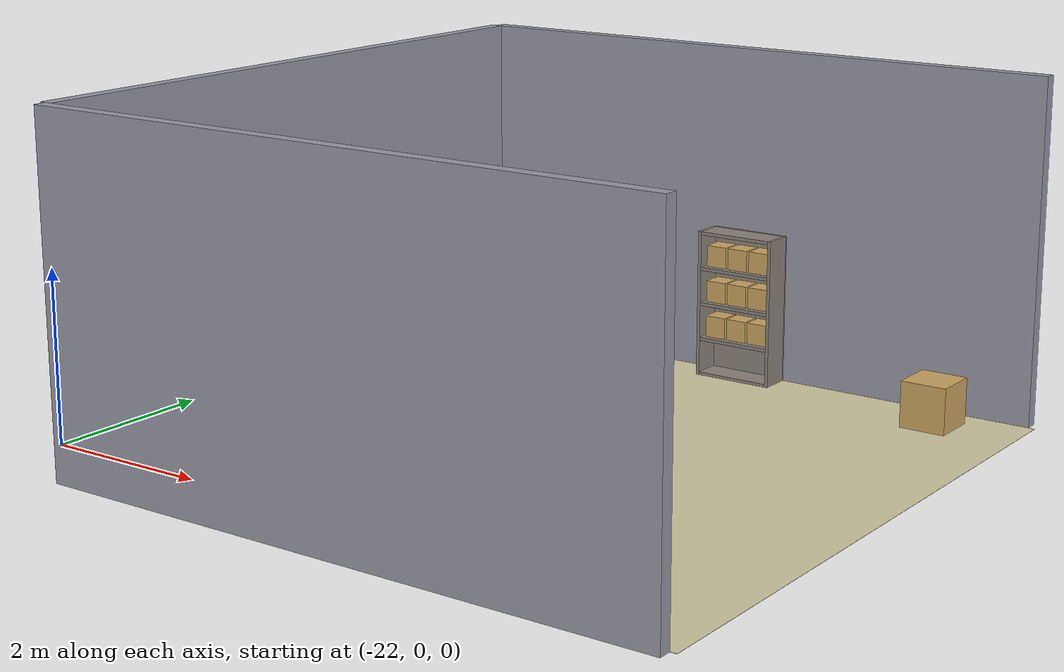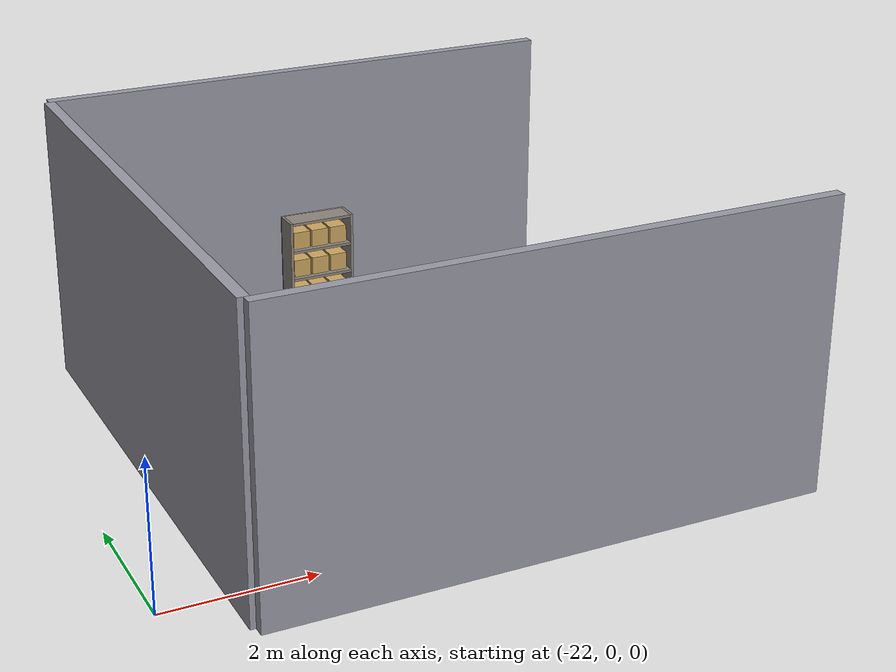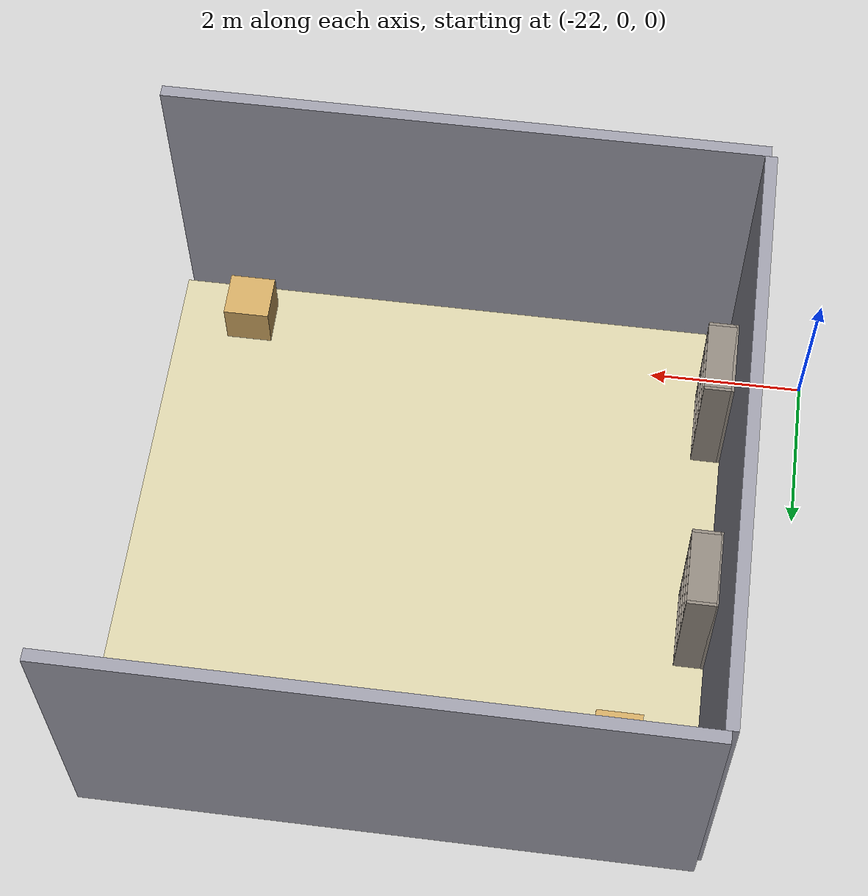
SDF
<?xml version="1.0"?>
<sdf version="1.8">
  <model name="room_g">
    <static>true</static>
    <pose>0 0 0 0 0 0</pose>
    <link name="floor_g">
      <pose>-17.25 3.0 0.002 0 0 0</pose>
      <visual name="vis">
        <geometry><box><size>7.5 7.5 0.004</size></box></geometry>
        <material><ambient>0.83 0.8 0.65 1</ambient><diffuse>0.83 0.8 0.65 1</diffuse></material>
      </visual>
    </link>
    <link name="wall_g_s">
      <pose>-17.325 -0.825 2.0 0 0 0</pose>
      <collision name="col"><geometry><box><size>7.5 0.15 4.0</size></box></geometry></collision>
      <visual name="vis">
        <geometry><box><size>7.5 0.15 4.0</size></box></geometry>
        <material><ambient>0.6 0.6 0.65 1</ambient><diffuse>0.6 0.6 0.65 1</diffuse></material>
      </visual>
    </link>
    <link name="wall_g_w">
      <pose>-21.075 3.0 2.0 0 0 0</pose>
      <collision name="col"><geometry><box><size>0.15 7.5 4.0</size></box></geometry></collision>
      <visual name="vis">
        <geometry><box><size>0.15 7.5 4.0</size></box></geometry>
        <material><ambient>0.6 0.6 0.65 1</ambient><diffuse>0.6 0.6 0.65 1</diffuse></material>
      </visual>
    </link>
    <link name="wall_g_n">
      <pose>-17.325 6.825 2.0 0 0 0</pose>
      <collision name="col"><geometry><box><size>7.5 0.15 4.0</size></box></geometry></collision>
      <visual name="vis">
        <geometry><box><size>7.5 0.15 4.0</size></box></geometry>
        <material><ambient>0.6 0.6 0.65 1</ambient><diffuse>0.6 0.6 0.65 1</diffuse></material>
      </visual>
    </link>
    <link name="shelf_g1_back">
      <pose>-20.98 0.75 0.9 0 0 0</pose>
      <collision name="col"><geometry><box><size>0.04 1.0 1.8</size></box></geometry></collision>
      <visual name="vis">
        <geometry><box><size>0.04 1.0 1.8</size></box></geometry>
        <material><ambient>0.55 0.52 0.48 1</ambient><diffuse>0.55 0.52 0.48 1</diffuse></material>
      </visual>
    </link>
    <link name="shelf_g1_sl">
      <pose>-20.8 0.27 0.9 0 0 0</pose>
      <collision name="col"><geometry><box><size>0.36000000000000004 0.04 1.8</size></box></geometry></collision>
      <visual name="vis">
        <geometry><box><size>0.36000000000000004 0.04 1.8</size></box></geometry>
        <material><ambient>0.55 0.52 0.48 1</ambient><diffuse>0.55 0.52 0.48 1</diffuse></material>
      </visual>
    </link>
    <link name="shelf_g1_sr">
      <pose>-20.8 1.23 0.9 0 0 0</pose>
      <collision name="col"><geometry><box><size>0.36000000000000004 0.04 1.8</size></box></geometry></collision>
      <visual name="vis">
        <geometry><box><size>0.36000000000000004 0.04 1.8</size></box></geometry>
        <material><ambient>0.55 0.52 0.48 1</ambient><diffuse>0.55 0.52 0.48 1</diffuse></material>
      </visual>
    </link>
    <link name="shelf_g1_brd0">
      <pose>-20.8 0.75 0.02 0 0 0</pose>
      <collision name="col"><geometry><box><size>0.36000000000000004 0.92 0.04</size></box></geometry></collision>
      <visual name="vis">
        <geometry><box><size>0.36000000000000004 0.92 0.04</size></box></geometry>
        <material><ambient>0.55 0.52 0.48 1</ambient><diffuse>0.55 0.52 0.48 1</diffuse></material>
      </visual>
    </link>
    <link name="shelf_g1_brd1">
      <pose>-20.8 0.75 0.46 0 0 0</pose>
      <collision name="col"><geometry><box><size>0.36000000000000004 0.92 0.04</size></box></geometry></collision>
      <visual name="vis">
        <geometry><box><size>0.36000000000000004 0.92 0.04</size></box></geometry>
        <material><ambient>0.55 0.52 0.48 1</ambient><diffuse>0.55 0.52 0.48 1</diffuse></material>
      </visual>
    </link>
    <link name="shelf_g1_brd2">
      <pose>-20.8 0.75 0.9 0 0 0</pose>
      <collision name="col"><geometry><box><size>0.36000000000000004 0.92 0.04</size></box></geometry></collision>
      <visual name="vis">
        <geometry><box><size>0.36000000000000004 0.92 0.04</size></box></geometry>
        <material><ambient>0.55 0.52 0.48 1</ambient><diffuse>0.55 0.52 0.48 1</diffuse></material>
      </visual>
    </link>
    <link name="shelf_g1_brd3">
      <pose>-20.8 0.75 1.34 0 0 0</pose>
      <collision name="col"><geometry><box><size>0.36000000000000004 0.92 0.04</size></box></geometry></collision>
      <visual name="vis">
        <geometry><box><size>0.36000000000000004 0.92 0.04</size></box></geometry>
        <material><ambient>0.55 0.52 0.48 1</ambient><diffuse>0.55 0.52 0.48 1</diffuse></material>
      </visual>
    </link>
    <link name="shelf_g1_brd4">
      <pose>-20.8 0.75 1.78 0 0 0</pose>
      <collision name="col"><geometry><box><size>0.36000000000000004 0.92 0.04</size></box></geometry></collision>
      <visual name="vis">
        <geometry><box><size>0.36000000000000004 0.92 0.04</size></box></geometry>
        <material><ambient>0.55 0.52 0.48 1</ambient><diffuse>0.55 0.52 0.48 1</diffuse></material>
      </visual>
    </link>
    <link name="shelf_g1_bx10">
      <pose>-20.830000000000002 0.45999999999999996 0.61 0 0 0</pose>
      <collision name="col"><geometry><box><size>0.26 0.26 0.26</size></box></geometry></collision>
      <visual name="vis">
        <geometry><box><size>0.26 0.26 0.26</size></box></geometry>
        <material><ambient>0.8 0.65 0.38 1</ambient><diffuse>0.8 0.65 0.38 1</diffuse></material>
      </visual>
    </link>
    <link name="shelf_g1_bx11">
      <pose>-20.830000000000002 0.75 0.61 0 0 0</pose>
      <collision name="col"><geometry><box><size>0.26 0.26 0.26</size></box></geometry></collision>
      <visual name="vis">
        <geometry><box><size>0.26 0.26 0.26</size></box></geometry>
        <material><ambient>0.8 0.65 0.38 1</ambient><diffuse>0.8 0.65 0.38 1</diffuse></material>
      </visual>
    </link>
    <link name="shelf_g1_bx12">
      <pose>-20.830000000000002 1.04 0.61 0 0 0</pose>
      <collision name="col"><geometry><box><size>0.26 0.26 0.26</size></box></geometry></collision>
      <visual name="vis">
        <geometry><box><size>0.26 0.26 0.26</size></box></geometry>
        <material><ambient>0.8 0.65 0.38 1</ambient><diffuse>0.8 0.65 0.38 1</diffuse></material>
      </visual>
    </link>
    <link name="shelf_g1_bx20">
      <pose>-20.830000000000002 0.45999999999999996 1.05 0 0 0</pose>
      <collision name="col"><geometry><box><size>0.26 0.26 0.26</size></box></geometry></collision>
      <visual name="vis">
        <geometry><box><size>0.26 0.26 0.26</size></box></geometry>
        <material><ambient>0.8 0.65 0.38 1</ambient><diffuse>0.8 0.65 0.38 1</diffuse></material>
      </visual>
    </link>
    <link name="shelf_g1_bx21">
      <pose>-20.830000000000002 0.75 1.05 0 0 0</pose>
      <collision name="col"><geometry><box><size>0.26 0.26 0.26</size></box></geometry></collision>
      <visual name="vis">
        <geometry><box><size>0.26 0.26 0.26</size></box></geometry>
        <material><ambient>0.8 0.65 0.38 1</ambient><diffuse>0.8 0.65 0.38 1</diffuse></material>
      </visual>
    </link>
    <link name="shelf_g1_bx22">
      <pose>-20.830000000000002 1.04 1.05 0 0 0</pose>
      <collision name="col"><geometry><box><size>0.26 0.26 0.26</size></box></geometry></collision>
      <visual name="vis">
        <geometry><box><size>0.26 0.26 0.26</size></box></geometry>
        <material><ambient>0.8 0.65 0.38 1</ambient><diffuse>0.8 0.65 0.38 1</diffuse></material>
      </visual>
    </link>
    <link name="shelf_g1_bx30">
      <pose>-20.830000000000002 0.45999999999999996 1.4900000000000002 0 0 0</pose>
      <collision name="col"><geometry><box><size>0.26 0.26 0.26</size></box></geometry></collision>
      <visual name="vis">
        <geometry><box><size>0.26 0.26 0.26</size></box></geometry>
        <material><ambient>0.8 0.65 0.38 1</ambient><diffuse>0.8 0.65 0.38 1</diffuse></material>
      </visual>
    </link>
    <link name="shelf_g1_bx31">
      <pose>-20.830000000000002 0.75 1.4900000000000002 0 0 0</pose>
      <collision name="col"><geometry><box><size>0.26 0.26 0.26</size></box></geometry></collision>
      <visual name="vis">
        <geometry><box><size>0.26 0.26 0.26</size></box></geometry>
        <material><ambient>0.8 0.65 0.38 1</ambient><diffuse>0.8 0.65 0.38 1</diffuse></material>
      </visual>
    </link>
    <link name="shelf_g1_bx32">
      <pose>-20.830000000000002 1.04 1.4900000000000002 0 0 0</pose>
      <collision name="col"><geometry><box><size>0.26 0.26 0.26</size></box></geometry></collision>
      <visual name="vis">
        <geometry><box><size>0.26 0.26 0.26</size></box></geometry>
        <material><ambient>0.8 0.65 0.38 1</ambient><diffuse>0.8 0.65 0.38 1</diffuse></material>
      </visual>
    </link>
    <link name="shelf_g2_back">
      <pose>-20.98 3.75 0.9 0 0 0</pose>
      <collision name="col"><geometry><box><size>0.04 1.0 1.8</size></box></geometry></collision>
      <visual name="vis">
        <geometry><box><size>0.04 1.0 1.8</size></box></geometry>
        <material><ambient>0.55 0.52 0.48 1</ambient><diffuse>0.55 0.52 0.48 1</diffuse></material>
      </visual>
    </link>
    <link name="shelf_g2_sl">
      <pose>-20.8 3.27 0.9 0 0 0</pose>
      <collision name="col"><geometry><box><size>0.36000000000000004 0.04 1.8</size></box></geometry></collision>
      <visual name="vis">
        <geometry><box><size>0.36000000000000004 0.04 1.8</size></box></geometry>
        <material><ambient>0.55 0.52 0.48 1</ambient><diffuse>0.55 0.52 0.48 1</diffuse></material>
      </visual>
    </link>
    <link name="shelf_g2_sr">
      <pose>-20.8 4.23 0.9 0 0 0</pose>
      <collision name="col"><geometry><box><size>0.36000000000000004 0.04 1.8</size></box></geometry></collision>
      <visual name="vis">
        <geometry><box><size>0.36000000000000004 0.04 1.8</size></box></geometry>
        <material><ambient>0.55 0.52 0.48 1</ambient><diffuse>0.55 0.52 0.48 1</diffuse></material>
      </visual>
    </link>
    <link name="shelf_g2_brd0">
      <pose>-20.8 3.75 0.02 0 0 0</pose>
      <collision name="col"><geometry><box><size>0.36000000000000004 0.92 0.04</size></box></geometry></collision>
      <visual name="vis">
        <geometry><box><size>0.36000000000000004 0.92 0.04</size></box></geometry>
        <material><ambient>0.55 0.52 0.48 1</ambient><diffuse>0.55 0.52 0.48 1</diffuse></material>
      </visual>
    </link>
    <link name="shelf_g2_brd1">
      <pose>-20.8 3.75 0.46 0 0 0</pose>
      <collision name="col"><geometry><box><size>0.36000000000000004 0.92 0.04</size></box></geometry></collision>
      <visual name="vis">
        <geometry><box><size>0.36000000000000004 0.92 0.04</size></box></geometry>
        <material><ambient>0.55 0.52 0.48 1</ambient><diffuse>0.55 0.52 0.48 1</diffuse></material>
      </visual>
    </link>
    <link name="shelf_g2_brd2">
      <pose>-20.8 3.75 0.9 0 0 0</pose>
      <collision name="col"><geometry><box><size>0.36000000000000004 0.92 0.04</size></box></geometry></collision>
      <visual name="vis">
        <geometry><box><size>0.36000000000000004 0.92 0.04</size></box></geometry>
        <material><ambient>0.55 0.52 0.48 1</ambient><diffuse>0.55 0.52 0.48 1</diffuse></material>
      </visual>
    </link>
    <link name="shelf_g2_brd3">
      <pose>-20.8 3.75 1.34 0 0 0</pose>
      <collision name="col"><geometry><box><size>0.36000000000000004 0.92 0.04</size></box></geometry></collision>
      <visual name="vis">
        <geometry><box><size>0.36000000000000004 0.92 0.04</size></box></geometry>
        <material><ambient>0.55 0.52 0.48 1</ambient><diffuse>0.55 0.52 0.48 1</diffuse></material>
      </visual>
    </link>
    <link name="shelf_g2_brd4">
      <pose>-20.8 3.75 1.78 0 0 0</pose>
      <collision name="col"><geometry><box><size>0.36000000000000004 0.92 0.04</size></box></geometry></collision>
      <visual name="vis">
        <geometry><box><size>0.36000000000000004 0.92 0.04</size></box></geometry>
        <material><ambient>0.55 0.52 0.48 1</ambient><diffuse>0.55 0.52 0.48 1</diffuse></material>
      </visual>
    </link>
    <link name="shelf_g2_bx10">
      <pose>-20.830000000000002 3.46 0.61 0 0 0</pose>
      <collision name="col"><geometry><box><size>0.26 0.26 0.26</size></box></geometry></collision>
      <visual name="vis">
        <geometry><box><size>0.26 0.26 0.26</size></box></geometry>
        <material><ambient>0.8 0.65 0.38 1</ambient><diffuse>0.8 0.65 0.38 1</diffuse></material>
      </visual>
    </link>
    <link name="shelf_g2_bx11">
      <pose>-20.830000000000002 3.75 0.61 0 0 0</pose>
      <collision name="col"><geometry><box><size>0.26 0.26 0.26</size></box></geometry></collision>
      <visual name="vis">
        <geometry><box><size>0.26 0.26 0.26</size></box></geometry>
        <material><ambient>0.8 0.65 0.38 1</ambient><diffuse>0.8 0.65 0.38 1</diffuse></material>
      </visual>
    </link>
    <link name="shelf_g2_bx12">
      <pose>-20.830000000000002 4.04 0.61 0 0 0</pose>
      <collision name="col"><geometry><box><size>0.26 0.26 0.26</size></box></geometry></collision>
      <visual name="vis">
        <geometry><box><size>0.26 0.26 0.26</size></box></geometry>
        <material><ambient>0.8 0.65 0.38 1</ambient><diffuse>0.8 0.65 0.38 1</diffuse></material>
      </visual>
    </link>
    <link name="shelf_g2_bx20">
      <pose>-20.830000000000002 3.46 1.05 0 0 0</pose>
      <collision name="col"><geometry><box><size>0.26 0.26 0.26</size></box></geometry></collision>
      <visual name="vis">
        <geometry><box><size>0.26 0.26 0.26</size></box></geometry>
        <material><ambient>0.8 0.65 0.38 1</ambient><diffuse>0.8 0.65 0.38 1</diffuse></material>
      </visual>
    </link>
    <link name="shelf_g2_bx21">
      <pose>-20.830000000000002 3.75 1.05 0 0 0</pose>
      <collision name="col"><geometry><box><size>0.26 0.26 0.26</size></box></geometry></collision>
      <visual name="vis">
        <geometry><box><size>0.26 0.26 0.26</size></box></geometry>
        <material><ambient>0.8 0.65 0.38 1</ambient><diffuse>0.8 0.65 0.38 1</diffuse></material>
      </visual>
    </link>
    <link name="shelf_g2_bx22">
      <pose>-20.830000000000002 4.04 1.05 0 0 0</pose>
      <collision name="col"><geometry><box><size>0.26 0.26 0.26</size></box></geometry></collision>
      <visual name="vis">
        <geometry><box><size>0.26 0.26 0.26</size></box></geometry>
        <material><ambient>0.8 0.65 0.38 1</ambient><diffuse>0.8 0.65 0.38 1</diffuse></material>
      </visual>
    </link>
    <link name="shelf_g2_bx30">
      <pose>-20.830000000000002 3.46 1.4900000000000002 0 0 0</pose>
      <collision name="col"><geometry><box><size>0.26 0.26 0.26</size></box></geometry></collision>
      <visual name="vis">
        <geometry><box><size>0.26 0.26 0.26</size></box></geometry>
        <material><ambient>0.8 0.65 0.38 1</ambient><diffuse>0.8 0.65 0.38 1</diffuse></material>
      </visual>
    </link>
    <link name="shelf_g2_bx31">
      <pose>-20.830000000000002 3.75 1.4900000000000002 0 0 0</pose>
      <collision name="col"><geometry><box><size>0.26 0.26 0.26</size></box></geometry></collision>
      <visual name="vis">
        <geometry><box><size>0.26 0.26 0.26</size></box></geometry>
        <material><ambient>0.8 0.65 0.38 1</ambient><diffuse>0.8 0.65 0.38 1</diffuse></material>
      </visual>
    </link>
    <link name="shelf_g2_bx32">
      <pose>-20.830000000000002 4.04 1.4900000000000002 0 0 0</pose>
      <collision name="col"><geometry><box><size>0.26 0.26 0.26</size></box></geometry></collision>
      <visual name="vis">
        <geometry><box><size>0.26 0.26 0.26</size></box></geometry>
        <material><ambient>0.8 0.65 0.38 1</ambient><diffuse>0.8 0.65 0.38 1</diffuse></material>
      </visual>
    </link>
    <link name="shelf_g3_back">
      <pose>-17.25 6.73 0.9 0 0 0</pose>
      <collision name="col"><geometry><box><size>1.0 0.04 1.8</size></box></geometry></collision>
      <visual name="vis">
        <geometry><box><size>1.0 0.04 1.8</size></box></geometry>
        <material><ambient>0.55 0.52 0.48 1</ambient><diffuse>0.55 0.52 0.48 1</diffuse></material>
      </visual>
    </link>
    <link name="shelf_g3_sl">
      <pose>-17.73 6.55 0.9 0 0 0</pose>
      <collision name="col"><geometry><box><size>0.04 0.36000000000000004 1.8</size></box></geometry></collision>
      <visual name="vis">
        <geometry><box><size>0.04 0.36000000000000004 1.8</size></box></geometry>
        <material><ambient>0.55 0.52 0.48 1</ambient><diffuse>0.55 0.52 0.48 1</diffuse></material>
      </visual>
    </link>
    <link name="shelf_g3_sr">
      <pose>-16.77 6.55 0.9 0 0 0</pose>
      <collision name="col"><geometry><box><size>0.04 0.36000000000000004 1.8</size></box></geometry></collision>
      <visual name="vis">
        <geometry><box><size>0.04 0.36000000000000004 1.8</size></box></geometry>
        <material><ambient>0.55 0.52 0.48 1</ambient><diffuse>0.55 0.52 0.48 1</diffuse></material>
      </visual>
    </link>
    <link name="shelf_g3_brd0">
      <pose>-17.25 6.55 0.02 0 0 0</pose>
      <collision name="col"><geometry><box><size>0.92 0.36000000000000004 0.04</size></box></geometry></collision>
      <visual name="vis">
        <geometry><box><size>0.92 0.36000000000000004 0.04</size></box></geometry>
        <material><ambient>0.55 0.52 0.48 1</ambient><diffuse>0.55 0.52 0.48 1</diffuse></material>
      </visual>
    </link>
    <link name="shelf_g3_brd1">
      <pose>-17.25 6.55 0.46 0 0 0</pose>
      <collision name="col"><geometry><box><size>0.92 0.36000000000000004 0.04</size></box></geometry></collision>
      <visual name="vis">
        <geometry><box><size>0.92 0.36000000000000004 0.04</size></box></geometry>
        <material><ambient>0.55 0.52 0.48 1</ambient><diffuse>0.55 0.52 0.48 1</diffuse></material>
      </visual>
    </link>
    <link name="shelf_g3_brd2">
      <pose>-17.25 6.55 0.9 0 0 0</pose>
      <collision name="col"><geometry><box><size>0.92 0.36000000000000004 0.04</size></box></geometry></collision>
      <visual name="vis">
        <geometry><box><size>0.92 0.36000000000000004 0.04</size></box></geometry>
        <material><ambient>0.55 0.52 0.48 1</ambient><diffuse>0.55 0.52 0.48 1</diffuse></material>
      </visual>
    </link>
    <link name="shelf_g3_brd3">
      <pose>-17.25 6.55 1.34 0 0 0</pose>
      <collision name="col"><geometry><box><size>0.92 0.36000000000000004 0.04</size></box></geometry></collision>
      <visual name="vis">
        <geometry><box><size>0.92 0.36000000000000004 0.04</size></box></geometry>
        <material><ambient>0.55 0.52 0.48 1</ambient><diffuse>0.55 0.52 0.48 1</diffuse></material>
      </visual>
    </link>
    <link name="shelf_g3_brd4">
      <pose>-17.25 6.55 1.78 0 0 0</pose>
      <collision name="col"><geometry><box><size>0.92 0.36000000000000004 0.04</size></box></geometry></collision>
      <visual name="vis">
        <geometry><box><size>0.92 0.36000000000000004 0.04</size></box></geometry>
        <material><ambient>0.55 0.52 0.48 1</ambient><diffuse>0.55 0.52 0.48 1</diffuse></material>
      </visual>
    </link>
    <link name="shelf_g3_bx10">
      <pose>-17.54 6.58 0.61 0 0 0</pose>
      <collision name="col"><geometry><box><size>0.26 0.26 0.26</size></box></geometry></collision>
      <visual name="vis">
        <geometry><box><size>0.26 0.26 0.26</size></box></geometry>
        <material><ambient>0.8 0.65 0.38 1</ambient><diffuse>0.8 0.65 0.38 1</diffuse></material>
      </visual>
    </link>
    <link name="shelf_g3_bx11">
      <pose>-17.25 6.58 0.61 0 0 0</pose>
      <collision name="col"><geometry><box><size>0.26 0.26 0.26</size></box></geometry></collision>
      <visual name="vis">
        <geometry><box><size>0.26 0.26 0.26</size></box></geometry>
        <material><ambient>0.8 0.65 0.38 1</ambient><diffuse>0.8 0.65 0.38 1</diffuse></material>
      </visual>
    </link>
    <link name="shelf_g3_bx12">
      <pose>-16.96 6.58 0.61 0 0 0</pose>
      <collision name="col"><geometry><box><size>0.26 0.26 0.26</size></box></geometry></collision>
      <visual name="vis">
        <geometry><box><size>0.26 0.26 0.26</size></box></geometry>
        <material><ambient>0.8 0.65 0.38 1</ambient><diffuse>0.8 0.65 0.38 1</diffuse></material>
      </visual>
    </link>
    <link name="shelf_g3_bx20">
      <pose>-17.54 6.58 1.05 0 0 0</pose>
      <collision name="col"><geometry><box><size>0.26 0.26 0.26</size></box></geometry></collision>
      <visual name="vis">
        <geometry><box><size>0.26 0.26 0.26</size></box></geometry>
        <material><ambient>0.8 0.65 0.38 1</ambient><diffuse>0.8 0.65 0.38 1</diffuse></material>
      </visual>
    </link>
    <link name="shelf_g3_bx21">
      <pose>-17.25 6.58 1.05 0 0 0</pose>
      <collision name="col"><geometry><box><size>0.26 0.26 0.26</size></box></geometry></collision>
      <visual name="vis">
        <geometry><box><size>0.26 0.26 0.26</size></box></geometry>
        <material><ambient>0.8 0.65 0.38 1</ambient><diffuse>0.8 0.65 0.38 1</diffuse></material>
      </visual>
    </link>
    <link name="shelf_g3_bx22">
      <pose>-16.96 6.58 1.05 0 0 0</pose>
      <collision name="col"><geometry><box><size>0.26 0.26 0.26</size></box></geometry></collision>
      <visual name="vis">
        <geometry><box><size>0.26 0.26 0.26</size></box></geometry>
        <material><ambient>0.8 0.65 0.38 1</ambient><diffuse>0.8 0.65 0.38 1</diffuse></material>
      </visual>
    </link>
    <link name="shelf_g3_bx30">
      <pose>-17.54 6.58 1.4900000000000002 0 0 0</pose>
      <collision name="col"><geometry><box><size>0.26 0.26 0.26</size></box></geometry></collision>
      <visual name="vis">
        <geometry><box><size>0.26 0.26 0.26</size></box></geometry>
        <material><ambient>0.8 0.65 0.38 1</ambient><diffuse>0.8 0.65 0.38 1</diffuse></material>
      </visual>
    </link>
    <link name="shelf_g3_bx31">
      <pose>-17.25 6.58 1.4900000000000002 0 0 0</pose>
      <collision name="col"><geometry><box><size>0.26 0.26 0.26</size></box></geometry></collision>
      <visual name="vis">
        <geometry><box><size>0.26 0.26 0.26</size></box></geometry>
        <material><ambient>0.8 0.65 0.38 1</ambient><diffuse>0.8 0.65 0.38 1</diffuse></material>
      </visual>
    </link>
    <link name="shelf_g3_bx32">
      <pose>-16.96 6.58 1.4900000000000002 0 0 0</pose>
      <collision name="col"><geometry><box><size>0.26 0.26 0.26</size></box></geometry></collision>
      <visual name="vis">
        <geometry><box><size>0.26 0.26 0.26</size></box></geometry>
        <material><ambient>0.8 0.65 0.38 1</ambient><diffuse>0.8 0.65 0.38 1</diffuse></material>
      </visual>
    </link>
    <link name="fbox_g1">
      <pose>-14.5 -0.2 0.3 0 0 0</pose>
      <collision name="col"><geometry><box><size>0.6 0.6 0.6</size></box></geometry></collision>
      <visual name="vis">
        <geometry><box><size>0.6 0.6 0.6</size></box></geometry>
        <material><ambient>0.8 0.65 0.38 1</ambient><diffuse>0.8 0.65 0.38 1</diffuse></material>
      </visual>
    </link>
    <link name="fbox_g2">
      <pose>-14.5 6.2 0.275 0 0 0</pose>
      <collision name="col"><geometry><box><size>0.55 0.55 0.55</size></box></geometry></collision>
      <visual name="vis">
        <geometry><box><size>0.55 0.55 0.55</size></box></geometry>
        <material><ambient>0.8 0.65 0.38 1</ambient><diffuse>0.8 0.65 0.38 1</diffuse></material>
      </visual>
    </link>
    <link name="fbox_g3">
      <pose>-20.0 5.5 0.29 0 0 0</pose>
      <collision name="col"><geometry><box><size>0.58 0.58 0.58</size></box></geometry></collision>
      <visual name="vis">
        <geometry><box><size>0.58 0.58 0.58</size></box></geometry>
        <material><ambient>0.8 0.65 0.38 1</ambient><diffuse>0.8 0.65 0.38 1</diffuse></material>
      </visual>
    </link>
  </model>
</sdf>
